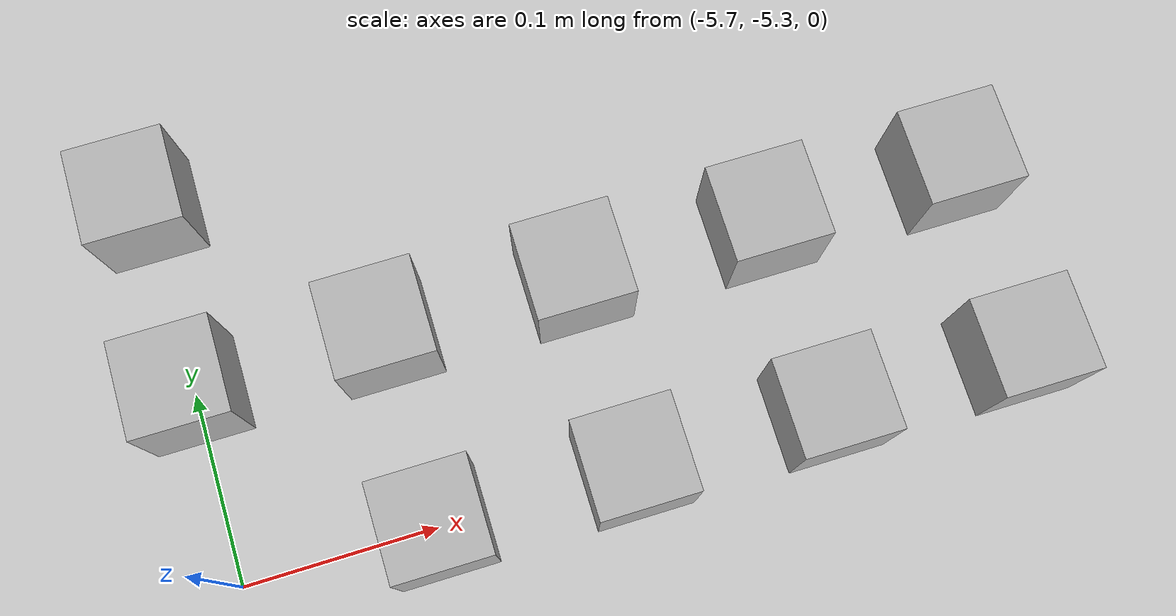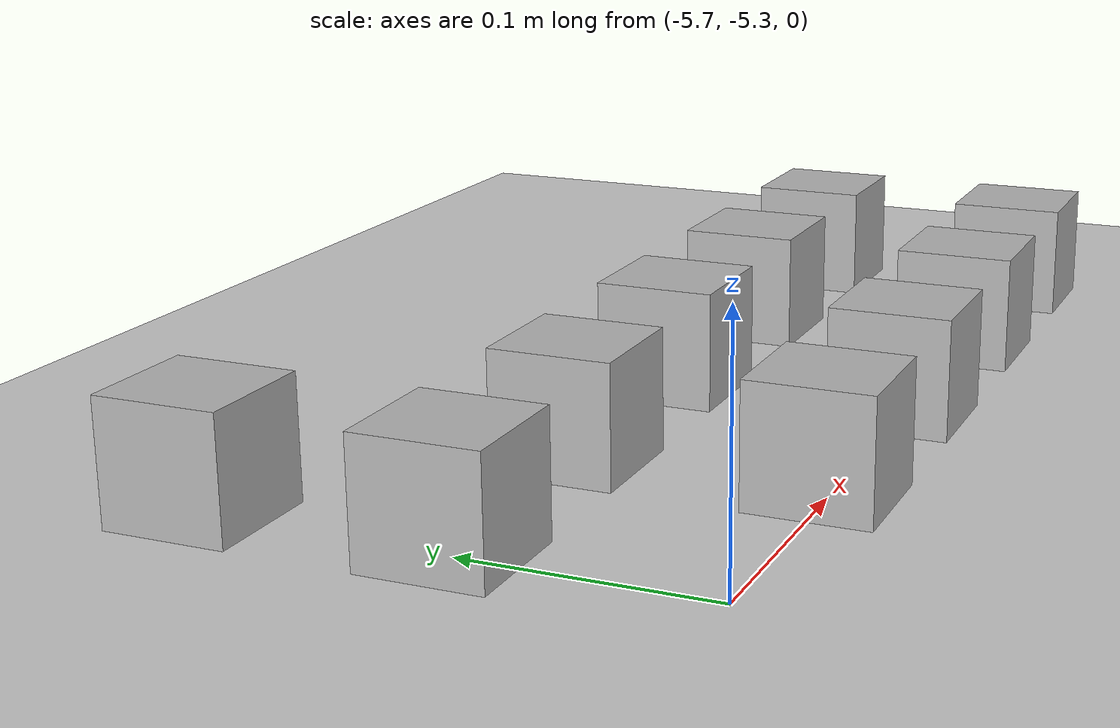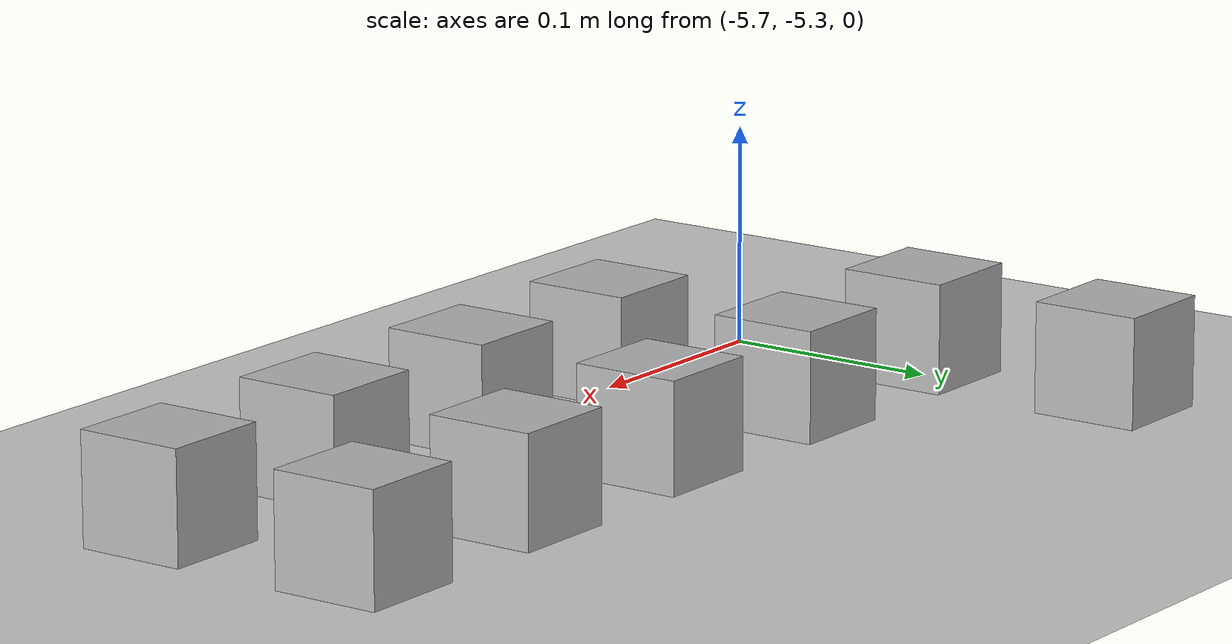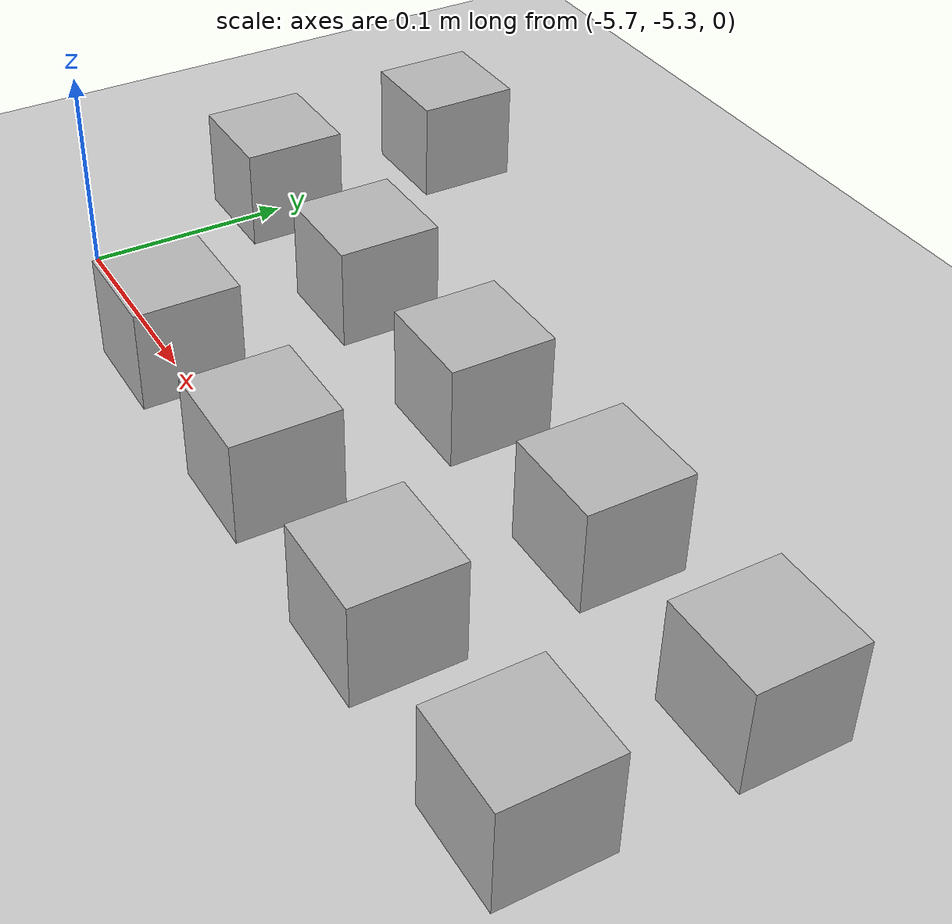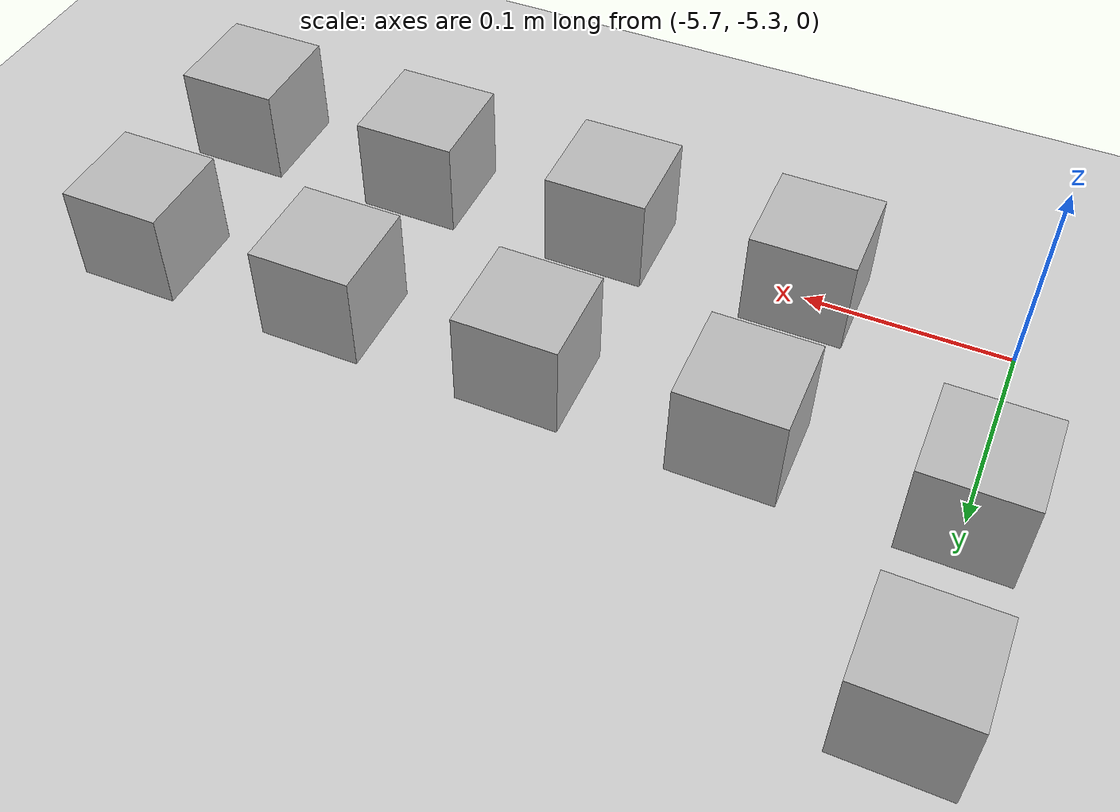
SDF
<sdf version="5.1">
 <world name="default">
  <model name="ground_plane">
   <static>1</static>
   <link name="link">
    <collision name="collision">
     <geometry><plane><normal>0 0 1</normal><size>100 100</size></plane></geometry>
     <surface><friction><ode><mu>100</mu><mu2>50</mu2></ode></friction></surface>
    </collision>
    <visual name="visual">
     <cast_shadows>0</cast_shadows>
     <geometry><plane><normal>0 0 1</normal><size>100 100</size></plane></geometry>
     <material>
      <script><uri>file://media/materials/scripts/gazebo.material</uri><name>Gazebo/Grey</name></script>
     </material>
    </visual>
   </link>
  </model>
  <model name="at40">
   <static>0</static>
   <link name="link">
    <inertial>
     <mass>0.01</mass>
     <inertia><ixx>4e-05</ixx><ixy>0</ixy><ixz>0</ixz><iyy>4e-05</iyy><iyz>0</iyz><izz>4e-05</izz></inertia>
    </inertial>
    <visual name="visual">
     <geometry><box><size>0.05 0.05 0.05</size></box></geometry>
     <material>
      <script>
       <uri>model://at0/materials/scripts</uri>
       <uri>model://at0/materials/textures</uri>
       <name>at0/Diffuse</name>
      </script>
     </material>
    </visual>
    <collision name="collision">
     <geometry><box><size>0.05 0.05 0.05</size></box></geometry>
     <surface><friction><ode><mu>0.8</mu><mu2>0.7</mu2></ode></friction></surface>
    </collision>
   </link>
   <pose>-5.7 -5.1 0.025 0 -0 0</pose>
  </model>
  <model name="at48">
   <static>0</static>
   <link name="link">
    <inertial>
     <mass>0.01</mass>
     <inertia><ixx>4e-05</ixx><ixy>0</ixy><ixz>0</ixz><iyy>4e-05</iyy><iyz>0</iyz><izz>4e-05</izz></inertia>
    </inertial>
    <visual name="visual">
     <geometry><box><size>0.05 0.05 0.05</size></box></geometry>
     <material>
      <script>
       <uri>model://at0/materials/scripts</uri>
       <uri>model://at0/materials/textures</uri>
       <name>at0/Diffuse</name>
      </script>
     </material>
    </visual>
    <collision name="collision">
     <geometry><box><size>0.05 0.05 0.05</size></box></geometry>
     <surface><friction><ode><mu>0.8</mu><mu2>0.7</mu2></ode></friction></surface>
    </collision>
   </link>
   <pose>-5.7 -5.2 0.025 0 -0 0</pose>
  </model>
  <model name="at49">
   <static>0</static>
   <link name="link">
    <inertial>
     <mass>0.01</mass>
     <inertia><ixx>4e-05</ixx><ixy>0</ixy><ixz>0</ixz><iyy>4e-05</iyy><iyz>0</iyz><izz>4e-05</izz></inertia>
    </inertial>
    <visual name="visual">
     <geometry><box><size>0.05 0.05 0.05</size></box></geometry>
     <material>
      <script>
       <uri>model://at0/materials/scripts</uri>
       <uri>model://at0/materials/textures</uri>
       <name>at0/Diffuse</name>
      </script>
     </material>
    </visual>
    <collision name="collision">
     <geometry><box><size>0.05 0.05 0.05</size></box></geometry>
     <surface><friction><ode><mu>0.8</mu><mu2>0.7</mu2></ode></friction></surface>
    </collision>
   </link>
   <pose>-5.6 -5.2 0.025 0 -0 0</pose>
  </model>
  <model name="at50">
   <static>0</static>
   <link name="link">
    <inertial>
     <mass>0.01</mass>
     <inertia><ixx>4e-05</ixx><ixy>0</ixy><ixz>0</ixz><iyy>4e-05</iyy><iyz>0</iyz><izz>4e-05</izz></inertia>
    </inertial>
    <visual name="visual">
     <geometry><box><size>0.05 0.05 0.05</size></box></geometry>
     <material>
      <script>
       <uri>model://at0/materials/scripts</uri>
       <uri>model://at0/materials/textures</uri>
       <name>at0/Diffuse</name>
      </script>
     </material>
    </visual>
    <collision name="collision">
     <geometry><box><size>0.05 0.05 0.05</size></box></geometry>
     <surface><friction><ode><mu>0.8</mu><mu2>0.7</mu2></ode></friction></surface>
    </collision>
   </link>
   <pose>-5.5 -5.2 0.025 0 -0 0</pose>
  </model>
  <model name="at51">
   <static>0</static>
   <link name="link">
    <inertial>
     <mass>0.01</mass>
     <inertia><ixx>4e-05</ixx><ixy>0</ixy><ixz>0</ixz><iyy>4e-05</iyy><iyz>0</iyz><izz>4e-05</izz></inertia>
    </inertial>
    <visual name="visual">
     <geometry><box><size>0.05 0.05 0.05</size></box></geometry>
     <material>
      <script>
       <uri>model://at0/materials/scripts</uri>
       <uri>model://at0/materials/textures</uri>
       <name>at0/Diffuse</name>
      </script>
     </material>
    </visual>
    <collision name="collision">
     <geometry><box><size>0.05 0.05 0.05</size></box></geometry>
     <surface><friction><ode><mu>0.8</mu><mu2>0.7</mu2></ode></friction></surface>
    </collision>
   </link>
   <pose>-5.4 -5.2 0.025 0 -0 0</pose>
  </model>
  <model name="at52">
   <static>0</static>
   <link name="link">
    <inertial>
     <mass>0.01</mass>
     <inertia><ixx>4e-05</ixx><ixy>0</ixy><ixz>0</ixz><iyy>4e-05</iyy><iyz>0</iyz><izz>4e-05</izz></inertia>
    </inertial>
    <visual name="visual">
     <geometry><box><size>0.05 0.05 0.05</size></box></geometry>
     <material>
      <script>
       <uri>model://at0/materials/scripts</uri>
       <uri>model://at0/materials/textures</uri>
       <name>at0/Diffuse</name>
      </script>
     </material>
    </visual>
    <collision name="collision">
     <geometry><box><size>0.05 0.05 0.05</size></box></geometry>
     <surface><friction><ode><mu>0.8</mu><mu2>0.7</mu2></ode></friction></surface>
    </collision>
   </link>
   <pose>-5.3 -5.2 0.025 0 -0 0</pose>
  </model>
  <model name="at57">
   <static>0</static>
   <link name="link">
    <inertial>
     <mass>0.01</mass>
     <inertia><ixx>4e-05</ixx><ixy>0</ixy><ixz>0</ixz><iyy>4e-05</iyy><iyz>0</iyz><izz>4e-05</izz></inertia>
    </inertial>
    <visual name="visual">
     <geometry><box><size>0.05 0.05 0.05</size></box></geometry>
     <material>
      <script>
       <uri>model://at0/materials/scripts</uri>
       <uri>model://at0/materials/textures</uri>
       <name>at0/Diffuse</name>
      </script>
     </material>
    </visual>
    <collision name="collision">
     <geometry><box><size>0.05 0.05 0.05</size></box></geometry>
     <surface><friction><ode><mu>0.8</mu><mu2>0.7</mu2></ode></friction></surface>
    </collision>
   </link>
   <pose>-5.6 -5.3 0.025 0 -0 0</pose>
  </model>
  <model name="at58">
   <static>0</static>
   <link name="link">
    <inertial>
     <mass>0.01</mass>
     <inertia><ixx>4e-05</ixx><ixy>0</ixy><ixz>0</ixz><iyy>4e-05</iyy><iyz>0</iyz><izz>4e-05</izz></inertia>
    </inertial>
    <visual name="visual">
     <geometry><box><size>0.05 0.05 0.05</size></box></geometry>
     <material>
      <script>
       <uri>model://at0/materials/scripts</uri>
       <uri>model://at0/materials/textures</uri>
       <name>at0/Diffuse</name>
      </script>
     </material>
    </visual>
    <collision name="collision">
     <geometry><box><size>0.05 0.05 0.05</size></box></geometry>
     <surface><friction><ode><mu>0.8</mu><mu2>0.7</mu2></ode></friction></surface>
    </collision>
   </link>
   <pose>-5.5 -5.3 0.025 0 -0 0</pose>
  </model>
  <model name="at59">
   <static>0</static>
   <link name="link">
    <inertial>
     <mass>0.01</mass>
     <inertia><ixx>4e-05</ixx><ixy>0</ixy><ixz>0</ixz><iyy>4e-05</iyy><iyz>0</iyz><izz>4e-05</izz></inertia>
    </inertial>
    <visual name="visual">
     <geometry><box><size>0.05 0.05 0.05</size></box></geometry>
     <material>
      <script>
       <uri>model://at0/materials/scripts</uri>
       <uri>model://at0/materials/textures</uri>
       <name>at0/Diffuse</name>
      </script>
     </material>
    </visual>
    <collision name="collision">
     <geometry><box><size>0.05 0.05 0.05</size></box></geometry>
     <surface><friction><ode><mu>0.8</mu><mu2>0.7</mu2></ode></friction></surface>
    </collision>
   </link>
   <pose>-5.4 -5.3 0.025 0 -0 0</pose>
  </model>
  <model name="at60">
   <static>0</static>
   <link name="link">
    <inertial>
     <mass>0.01</mass>
     <inertia><ixx>4e-05</ixx><ixy>0</ixy><ixz>0</ixz><iyy>4e-05</iyy><iyz>0</iyz><izz>4e-05</izz></inertia>
    </inertial>
    <visual name="visual">
     <geometry><box><size>0.05 0.05 0.05</size></box></geometry>
     <material>
      <script>
       <uri>model://at0/materials/scripts</uri>
       <uri>model://at0/materials/textures</uri>
       <name>at0/Diffuse</name>
      </script>
     </material>
    </visual>
    <collision name="collision">
     <geometry><box><size>0.05 0.05 0.05</size></box></geometry>
     <surface><friction><ode><mu>0.8</mu><mu2>0.7</mu2></ode></friction></surface>
    </collision>
   </link>
   <pose>-5.3 -5.3 0.025 0 -0 0</pose>
  </model>
 </world>
</sdf>
